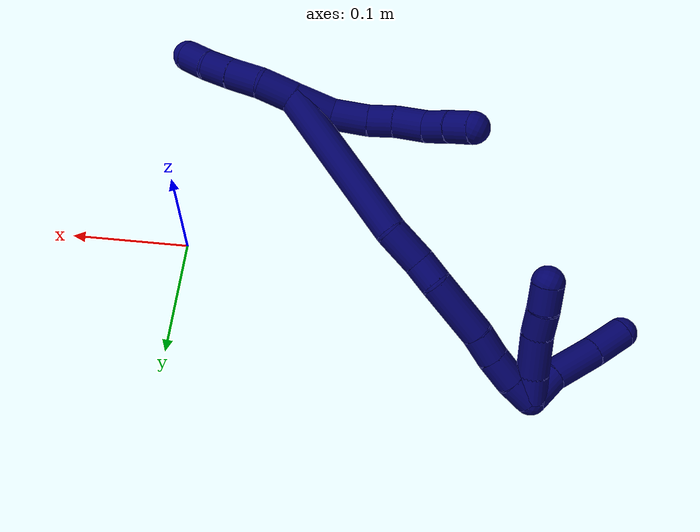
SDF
<sdf version="1.7">
 <world name="default">
  <model name="7">
   <static>0</static>
   <link name="7">
    <collision name="collision-cylinder-e_1_2_8">
     <pose>0.000533 -0.002074 0.0162 0.127331 0.032616 0.00208</pose>
     <geometry><cylinder><radius>0.0125</radius><length>0.032681</length></cylinder></geometry>
     <surface>
      <friction><ode><mu>1.16</mu><mu2>1.16</mu2><slip1>0</slip1><slip2>0</slip2></ode></friction>
      <contact><ode><kp>1e+06</kp><kd>1</kd><max_vel>0</max_vel><min_depth>0.001</min_depth></ode></contact>
     </surface>
    </collision>
    <visual name="visual-cylinder-e_1_2_8">
     <pose>0.000533 -0.002074 0.0162 0.127331 0.032616 0.00208</pose>
     <geometry><cylinder><radius>0.0125</radius><length>0.032681</length></cylinder></geometry>
     <material><ambient>0.003922 0 0.403922 1</ambient></material>
    </visual>
    <collision name="collision-cylinder-e_2_8_9">
     <pose>0.005211 -0.003806 0.046571 -0.024125 0.284496 -0.003455</pose>
     <geometry><cylinder><radius>0.0125</radius><length>0.029538</length></cylinder></geometry>
     <surface>
      <friction><ode><mu>1.16</mu><mu2>1.16</mu2><slip1>0</slip1><slip2>0</slip2></ode></friction>
      <contact><ode><kp>1e+06</kp><kd>1</kd><max_vel>0</max_vel><min_depth>0.001</min_depth></ode></contact>
     </surface>
    </collision>
    <visual name="visual-cylinder-e_2_8_9">
     <pose>0.005211 -0.003806 0.046571 -0.024125 0.284496 -0.003455</pose>
     <geometry><cylinder><radius>0.0125</radius><length>0.029538</length></cylinder></geometry>
     <material><ambient>0.003922 0 0.403922 1</ambient></material>
    </visual>
    <collision name="collision-cylinder-e_3_9_10">
     <pose>0.013733 -0.002551 0.070312 -0.095072 0.427178 -0.020636</pose>
     <geometry><cylinder><radius>0.0125</radius><length>0.021126</length></cylinder></geometry>
     <surface>
      <friction><ode><mu>1.16</mu><mu2>1.16</mu2><slip1>0</slip1><slip2>0</slip2></ode></friction>
      <contact><ode><kp>1e+06</kp><kd>1</kd><max_vel>0</max_vel><min_depth>0.001</min_depth></ode></contact>
     </surface>
    </collision>
    <visual name="visual-cylinder-e_3_9_10">
     <pose>0.013733 -0.002551 0.070312 -0.095072 0.427178 -0.020636</pose>
     <geometry><cylinder><radius>0.0125</radius><length>0.021126</length></cylinder></geometry>
     <material><ambient>0.003922 0 0.403922 1</ambient></material>
    </visual>
    <collision name="collision-cylinder-e_4_10_11">
     <pose>0.022226 0.002046 0.09192 -0.29706 0.316106 -0.047688</pose>
     <geometry><cylinder><radius>0.0125</radius><length>0.026491</length></cylinder></geometry>
     <surface>
      <friction><ode><mu>1.16</mu><mu2>1.16</mu2><slip1>0</slip1><slip2>0</slip2></ode></friction>
      <contact><ode><kp>1e+06</kp><kd>1</kd><max_vel>0</max_vel><min_depth>0.001</min_depth></ode></contact>
     </surface>
    </collision>
    <visual name="visual-cylinder-e_4_10_11">
     <pose>0.022226 0.002046 0.09192 -0.29706 0.316106 -0.047688</pose>
     <geometry><cylinder><radius>0.0125</radius><length>0.026491</length></cylinder></geometry>
     <material><ambient>0.003922 0 0.403922 1</ambient></material>
    </visual>
    <collision name="collision-cylinder-e_5_11_12">
     <pose>0.030673 0.010654 0.111556 -0.574925 0.446021 -0.133897</pose>
     <geometry><cylinder><radius>0.0125</radius><length>0.020069</length></cylinder></geometry>
     <surface>
      <friction><ode><mu>1.16</mu><mu2>1.16</mu2><slip1>0</slip1><slip2>0</slip2></ode></friction>
      <contact><ode><kp>1e+06</kp><kd>1</kd><max_vel>0</max_vel><min_depth>0.001</min_depth></ode></contact>
     </surface>
    </collision>
    <visual name="visual-cylinder-e_5_11_12">
     <pose>0.030673 0.010654 0.111556 -0.574925 0.446021 -0.133897</pose>
     <geometry><cylinder><radius>0.0125</radius><length>0.020069</length></cylinder></geometry>
     <material><ambient>0.003922 0 0.403922 1</ambient></material>
    </visual>
    <collision name="collision-cylinder-e_6_12_6">
     <pose>0.039001 0.020177 0.12714 -0.522532 0.409466 -0.110924</pose>
     <geometry><cylinder><radius>0.0125</radius><length>0.020095</length></cylinder></geometry>
     <surface>
      <friction><ode><mu>1.16</mu><mu2>1.16</mu2><slip1>0</slip1><slip2>0</slip2></ode></friction>
      <contact><ode><kp>1e+06</kp><kd>1</kd><max_vel>0</max_vel><min_depth>0.001</min_depth></ode></contact>
     </surface>
    </collision>
    <visual name="visual-cylinder-e_6_12_6">
     <pose>0.039001 0.020177 0.12714 -0.522532 0.409466 -0.110924</pose>
     <geometry><cylinder><radius>0.0125</radius><length>0.020095</length></cylinder></geometry>
     <material><ambient>0.003922 0 0.403922 1</ambient></material>
    </visual>
    <collision name="collision-cylinder-e_1_2_13">
     <pose>-0.000501 0.000101 -0.014416 -3.13462 -0.034744 2.74555</pose>
     <geometry><cylinder><radius>0.0125</radius><length>0.028849</length></cylinder></geometry>
     <surface>
      <friction><ode><mu>1.16</mu><mu2>1.16</mu2><slip1>0</slip1><slip2>0</slip2></ode></friction>
      <contact><ode><kp>1e+06</kp><kd>1</kd><max_vel>0</max_vel><min_depth>0.001</min_depth></ode></contact>
     </surface>
    </collision>
    <visual name="visual-cylinder-e_1_2_13">
     <pose>-0.000501 0.000101 -0.014416 -3.13462 -0.034744 2.74555</pose>
     <geometry><cylinder><radius>0.0125</radius><length>0.028849</length></cylinder></geometry>
     <material><ambient>0.003922 0 0.403922 1</ambient></material>
    </visual>
    <collision name="collision-cylinder-e_2_13_14">
     <pose>-0.003291 -0.002478 -0.041604 2.93482 -0.173628 -1.39592</pose>
     <geometry><cylinder><radius>0.0125</radius><length>0.0265</length></cylinder></geometry>
     <surface>
      <friction><ode><mu>1.16</mu><mu2>1.16</mu2><slip1>0</slip1><slip2>0</slip2></ode></friction>
      <contact><ode><kp>1e+06</kp><kd>1</kd><max_vel>0</max_vel><min_depth>0.001</min_depth></ode></contact>
     </surface>
    </collision>
    <visual name="visual-cylinder-e_2_13_14">
     <pose>-0.003291 -0.002478 -0.041604 2.93482 -0.173628 -1.39592</pose>
     <geometry><cylinder><radius>0.0125</radius><length>0.0265</length></cylinder></geometry>
     <material><ambient>0.003922 0 0.403922 1</ambient></material>
    </visual>
    <collision name="collision-cylinder-e_3_14_15">
     <pose>-0.007059 -0.007734 -0.06501 2.90388 -0.134379 -1.02627</pose>
     <geometry><cylinder><radius>0.0125</radius><length>0.02208</length></cylinder></geometry>
     <surface>
      <friction><ode><mu>1.16</mu><mu2>1.16</mu2><slip1>0</slip1><slip2>0</slip2></ode></friction>
      <contact><ode><kp>1e+06</kp><kd>1</kd><max_vel>0</max_vel><min_depth>0.001</min_depth></ode></contact>
     </surface>
    </collision>
    <visual name="visual-cylinder-e_3_14_15">
     <pose>-0.007059 -0.007734 -0.06501 2.90388 -0.134379 -1.02627</pose>
     <geometry><cylinder><radius>0.0125</radius><length>0.02208</length></cylinder></geometry>
     <material><ambient>0.003922 0 0.403922 1</ambient></material>
    </visual>
    <collision name="collision-cylinder-e_4_15_5">
     <pose>-0.009514 -0.015227 -0.085753 2.68896 -0.086552 -0.371775</pose>
     <geometry><cylinder><radius>0.0125</radius><length>0.02257</length></cylinder></geometry>
     <surface>
      <friction><ode><mu>1.16</mu><mu2>1.16</mu2><slip1>0</slip1><slip2>0</slip2></ode></friction>
      <contact><ode><kp>1e+06</kp><kd>1</kd><max_vel>0</max_vel><min_depth>0.001</min_depth></ode></contact>
     </surface>
    </collision>
    <visual name="visual-cylinder-e_4_15_5">
     <pose>-0.009514 -0.015227 -0.085753 2.68896 -0.086552 -0.371775</pose>
     <geometry><cylinder><radius>0.0125</radius><length>0.02257</length></cylinder></geometry>
     <material><ambient>0.003922 0 0.403922 1</ambient></material>
    </visual>
    <collision name="collision-cylinder-e_1_2_16">
     <pose>-0.026229 0.018352 0.056986 -0.311565 -0.412926 0.065766</pose>
     <geometry><cylinder><radius>0.0125</radius><length>0.130723</length></cylinder></geometry>
     <surface>
      <friction><ode><mu>1.16</mu><mu2>1.16</mu2><slip1>0</slip1><slip2>0</slip2></ode></friction>
      <contact><ode><kp>1e+06</kp><kd>1</kd><max_vel>0</max_vel><min_depth>0.001</min_depth></ode></contact>
     </surface>
    </collision>
    <visual name="visual-cylinder-e_1_2_16">
     <pose>-0.026229 0.018352 0.056986 -0.311565 -0.412926 0.065766</pose>
     <geometry><cylinder><radius>0.0125</radius><length>0.130723</length></cylinder></geometry>
     <material><ambient>0.003922 0 0.403922 1</ambient></material>
    </visual>
    <collision name="collision-cylinder-e_2_16_17">
     <pose>-0.058123 0.037593 0.128691 -0.060229 -0.366795 0.011175</pose>
     <geometry><cylinder><radius>0.0125</radius><length>0.031595</length></cylinder></geometry>
     <surface>
      <friction><ode><mu>1.16</mu><mu2>1.16</mu2><slip1>0</slip1><slip2>0</slip2></ode></friction>
      <contact><ode><kp>1e+06</kp><kd>1</kd><max_vel>0</max_vel><min_depth>0.001</min_depth></ode></contact>
     </surface>
    </collision>
    <visual name="visual-cylinder-e_2_16_17">
     <pose>-0.058123 0.037593 0.128691 -0.060229 -0.366795 0.011175</pose>
     <geometry><cylinder><radius>0.0125</radius><length>0.031595</length></cylinder></geometry>
     <material><ambient>0.003922 0 0.403922 1</ambient></material>
    </visual>
    <collision name="collision-cylinder-e_3_17_18">
     <pose>-0.067799 0.040445 0.152547 -0.21188 -0.405318 0.043694</pose>
     <geometry><cylinder><radius>0.0125</radius><length>0.020338</length></cylinder></geometry>
     <surface>
      <friction><ode><mu>1.16</mu><mu2>1.16</mu2><slip1>0</slip1><slip2>0</slip2></ode></friction>
      <contact><ode><kp>1e+06</kp><kd>1</kd><max_vel>0</max_vel><min_depth>0.001</min_depth></ode></contact>
     </surface>
    </collision>
    <visual name="visual-cylinder-e_3_17_18">
     <pose>-0.067799 0.040445 0.152547 -0.21188 -0.405318 0.043694</pose>
     <geometry><cylinder><radius>0.0125</radius><length>0.020338</length></cylinder></geometry>
     <material><ambient>0.003922 0 0.403922 1</ambient></material>
    </visual>
    <collision name="collision-cylinder-e_4_18_19">
     <pose>-0.082673 0.04115 0.184368 0.055512 -0.446049 -0.012593</pose>
     <geometry><cylinder><radius>0.0125</radius><length>0.050367</length></cylinder></geometry>
     <surface>
      <friction><ode><mu>1.16</mu><mu2>1.16</mu2><slip1>0</slip1><slip2>0</slip2></ode></friction>
      <contact><ode><kp>1e+06</kp><kd>1</kd><max_vel>0</max_vel><min_depth>0.001</min_depth></ode></contact>
     </surface>
    </collision>
    <visual name="visual-cylinder-e_4_18_19">
     <pose>-0.082673 0.04115 0.184368 0.055512 -0.446049 -0.012593</pose>
     <geometry><cylinder><radius>0.0125</radius><length>0.050367</length></cylinder></geometry>
     <material><ambient>0.003922 0 0.403922 1</ambient></material>
    </visual>
    <collision name="collision-cylinder-e_5_19_20">
     <pose>-0.0995 0.038959 0.216454 0.098705 -0.562989 -0.028564</pose>
     <geometry><cylinder><radius>0.0125</radius><length>0.022343</length></cylinder></geometry>
     <surface>
      <friction><ode><mu>1.16</mu><mu2>1.16</mu2><slip1>0</slip1><slip2>0</slip2></ode></friction>
      <contact><ode><kp>1e+06</kp><kd>1</kd><max_vel>0</max_vel><min_depth>0.001</min_depth></ode></contact>
     </surface>
    </collision>
    <visual name="visual-cylinder-e_5_19_20">
     <pose>-0.0995 0.038959 0.216454 0.098705 -0.562989 -0.028564</pose>
     <geometry><cylinder><radius>0.0125</radius><length>0.022343</length></cylinder></geometry>
     <material><ambient>0.003922 0 0.403922 1</ambient></material>
    </visual>
    <collision name="collision-cylinder-e_6_20_21">
     <pose>-0.110837 0.037313 0.236539 0.066756 -0.46525 -0.015821</pose>
     <geometry><cylinder><radius>0.0125</radius><length>0.02396</length></cylinder></geometry>
     <surface>
      <friction><ode><mu>1.16</mu><mu2>1.16</mu2><slip1>0</slip1><slip2>0</slip2></ode></friction>
      <contact><ode><kp>1e+06</kp><kd>1</kd><max_vel>0</max_vel><min_depth>0.001</min_depth></ode></contact>
     </surface>
    </collision>
    <visual name="visual-cylinder-e_6_20_21">
     <pose>-0.110837 0.037313 0.236539 0.066756 -0.46525 -0.015821</pose>
     <geometry><cylinder><radius>0.0125</radius><length>0.02396</length></cylinder></geometry>
     <material><ambient>0.003922 0 0.403922 1</ambient></material>
    </visual>
    <collision name="collision-cylinder-e_7_21_1">
     <pose>-0.11964 0.035593 0.256921 0.103351 -0.338016 -0.017651</pose>
     <geometry><cylinder><radius>0.0125</radius><length>0.020673</length></cylinder></geometry>
     <surface>
      <friction><ode><mu>1.16</mu><mu2>1.16</mu2><slip1>0</slip1><slip2>0</slip2></ode></friction>
      <contact><ode><kp>1e+06</kp><kd>1</kd><max_vel>0</max_vel><min_depth>0.001</min_depth></ode></contact>
     </surface>
    </collision>
    <visual name="visual-cylinder-e_7_21_1">
     <pose>-0.11964 0.035593 0.256921 0.103351 -0.338016 -0.017651</pose>
     <geometry><cylinder><radius>0.0125</radius><length>0.020673</length></cylinder></geometry>
     <material><ambient>0.003922 0 0.403922 1</ambient></material>
    </visual>
    <collision name="collision-cylinder-e_1_1_22">
     <pose>-0.113137 0.035386 0.262446 -2.95263 1.16636 -2.85627</pose>
     <geometry><cylinder><radius>0.0125</radius><length>0.021604</length></cylinder></geometry>
     <surface>
      <friction><ode><mu>1.16</mu><mu2>1.16</mu2><slip1>0</slip1><slip2>0</slip2></ode></friction>
      <contact><ode><kp>1e+06</kp><kd>1</kd><max_vel>0</max_vel><min_depth>0.001</min_depth></ode></contact>
     </surface>
    </collision>
    <visual name="visual-cylinder-e_1_1_22">
     <pose>-0.113137 0.035386 0.262446 -2.95263 1.16636 -2.85627</pose>
     <geometry><cylinder><radius>0.0125</radius><length>0.021604</length></cylinder></geometry>
     <material><ambient>0.003922 0 0.403922 1</ambient></material>
    </visual>
    <collision name="collision-cylinder-e_2_22_23">
     <pose>-0.087324 0.039471 0.251987 -2.65959 1.15083 -2.41719</pose>
     <geometry><cylinder><radius>0.0125</radius><length>0.034787</length></cylinder></geometry>
     <surface>
      <friction><ode><mu>1.16</mu><mu2>1.16</mu2><slip1>0</slip1><slip2>0</slip2></ode></friction>
      <contact><ode><kp>1e+06</kp><kd>1</kd><max_vel>0</max_vel><min_depth>0.001</min_depth></ode></contact>
     </surface>
    </collision>
    <visual name="visual-cylinder-e_2_22_23">
     <pose>-0.087324 0.039471 0.251987 -2.65959 1.15083 -2.41719</pose>
     <geometry><cylinder><radius>0.0125</radius><length>0.034787</length></cylinder></geometry>
     <material><ambient>0.003922 0 0.403922 1</ambient></material>
    </visual>
    <collision name="collision-cylinder-e_3_23_24">
     <pose>-0.061421 0.045818 0.242815 -2.3274 1.17335 -1.99075</pose>
     <geometry><cylinder><radius>0.0125</radius><length>0.021738</length></cylinder></geometry>
     <surface>
      <friction><ode><mu>1.16</mu><mu2>1.16</mu2><slip1>0</slip1><slip2>0</slip2></ode></friction>
      <contact><ode><kp>1e+06</kp><kd>1</kd><max_vel>0</max_vel><min_depth>0.001</min_depth></ode></contact>
     </surface>
    </collision>
    <visual name="visual-cylinder-e_3_23_24">
     <pose>-0.061421 0.045818 0.242815 -2.3274 1.17335 -1.99075</pose>
     <geometry><cylinder><radius>0.0125</radius><length>0.021738</length></cylinder></geometry>
     <material><ambient>0.003922 0 0.403922 1</ambient></material>
    </visual>
    <collision name="collision-cylinder-e_4_24_4">
     <pose>-0.041198 0.05067 0.236418 -2.66927 1.20215 -2.46655</pose>
     <geometry><cylinder><radius>0.0125</radius><length>0.021872</length></cylinder></geometry>
     <surface>
      <friction><ode><mu>1.16</mu><mu2>1.16</mu2><slip1>0</slip1><slip2>0</slip2></ode></friction>
      <contact><ode><kp>1e+06</kp><kd>1</kd><max_vel>0</max_vel><min_depth>0.001</min_depth></ode></contact>
     </surface>
    </collision>
    <visual name="visual-cylinder-e_4_24_4">
     <pose>-0.041198 0.05067 0.236418 -2.66927 1.20215 -2.46655</pose>
     <geometry><cylinder><radius>0.0125</radius><length>0.021872</length></cylinder></geometry>
     <material><ambient>0.003922 0 0.403922 1</ambient></material>
    </visual>
    <collision name="collision-cylinder-e_1_1_25">
     <pose>-0.113571 0.025861 0.271258 1.08232 0.765507 0.474817</pose>
     <geometry><cylinder><radius>0.0125</radius><length>0.027411</length></cylinder></geometry>
     <surface>
      <friction><ode><mu>1.16</mu><mu2>1.16</mu2><slip1>0</slip1><slip2>0</slip2></ode></friction>
      <contact><ode><kp>1e+06</kp><kd>1</kd><max_vel>0</max_vel><min_depth>0.001</min_depth></ode></contact>
     </surface>
    </collision>
    <visual name="visual-cylinder-e_1_1_25">
     <pose>-0.113571 0.025861 0.271258 1.08232 0.765507 0.474817</pose>
     <geometry><cylinder><radius>0.0125</radius><length>0.027411</length></cylinder></geometry>
     <material><ambient>0.003922 0 0.403922 1</ambient></material>
    </visual>
    <collision name="collision-cylinder-e_2_25_26">
     <pose>-0.091533 0.005868 0.287423 0.773923 0.661171 0.277894</pose>
     <geometry><cylinder><radius>0.0125</radius><length>0.040845</length></cylinder></geometry>
     <surface>
      <friction><ode><mu>1.16</mu><mu2>1.16</mu2><slip1>0</slip1><slip2>0</slip2></ode></friction>
      <contact><ode><kp>1e+06</kp><kd>1</kd><max_vel>0</max_vel><min_depth>0.001</min_depth></ode></contact>
     </surface>
    </collision>
    <visual name="visual-cylinder-e_2_25_26">
     <pose>-0.091533 0.005868 0.287423 0.773923 0.661171 0.277894</pose>
     <geometry><cylinder><radius>0.0125</radius><length>0.040845</length></cylinder></geometry>
     <material><ambient>0.003922 0 0.403922 1</ambient></material>
    </visual>
    <collision name="collision-cylinder-e_3_26_3">
     <pose>-0.068556 -0.013988 0.30727 0.801375 0.717641 0.315117</pose>
     <geometry><cylinder><radius>0.0125</radius><length>0.031743</length></cylinder></geometry>
     <surface>
      <friction><ode><mu>1.16</mu><mu2>1.16</mu2><slip1>0</slip1><slip2>0</slip2></ode></friction>
      <contact><ode><kp>1e+06</kp><kd>1</kd><max_vel>0</max_vel><min_depth>0.001</min_depth></ode></contact>
     </surface>
    </collision>
    <visual name="visual-cylinder-e_3_26_3">
     <pose>-0.068556 -0.013988 0.30727 0.801375 0.717641 0.315117</pose>
     <geometry><cylinder><radius>0.0125</radius><length>0.031743</length></cylinder></geometry>
     <material><ambient>0.003922 0 0.403922 1</ambient></material>
    </visual>
    <collision name="collision-sphere-3">
     <pose>-0.058118 -0.022576 0.315589 0 -0 0</pose>
     <geometry><sphere><radius>0.0125</radius></sphere></geometry>
     <surface>
      <friction><ode><mu>1.16</mu><mu2>1.16</mu2><slip1>0</slip1><slip2>0</slip2></ode></friction>
      <contact><ode><kp>1e+06</kp><kd>1</kd><max_vel>0</max_vel><min_depth>0.001</min_depth></ode></contact>
     </surface>
    </collision>
    <visual name="visual-sphere-3">
     <pose>-0.058118 -0.022576 0.315589 0 -0 0</pose>
     <geometry><sphere><radius>0.0125</radius></sphere></geometry>
     <material><ambient>0.003922 0 0.403922 1</ambient></material>
    </visual>
    <collision name="collision-sphere-26">
     <pose>-0.078993 -0.005399 0.298951 0 -0 0</pose>
     <geometry><sphere><radius>0.0125</radius></sphere></geometry>
     <surface>
      <friction><ode><mu>1.16</mu><mu2>1.16</mu2><slip1>0</slip1><slip2>0</slip2></ode></friction>
      <contact><ode><kp>1e+06</kp><kd>1</kd><max_vel>0</max_vel><min_depth>0.001</min_depth></ode></contact>
     </surface>
    </collision>
    <visual name="visual-sphere-26">
     <pose>-0.078993 -0.005399 0.298951 0 -0 0</pose>
     <geometry><sphere><radius>0.0125</radius></sphere></geometry>
     <material><ambient>0.003922 0 0.403922 1</ambient></material>
    </visual>
    <collision name="collision-sphere-25">
     <pose>-0.104074 0.017134 0.275896 0 -0 0</pose>
     <geometry><sphere><radius>0.0125</radius></sphere></geometry>
     <surface>
      <friction><ode><mu>1.16</mu><mu2>1.16</mu2><slip1>0</slip1><slip2>0</slip2></ode></friction>
      <contact><ode><kp>1e+06</kp><kd>1</kd><max_vel>0</max_vel><min_depth>0.001</min_depth></ode></contact>
     </surface>
    </collision>
    <visual name="visual-sphere-25">
     <pose>-0.104074 0.017134 0.275896 0 -0 0</pose>
     <geometry><sphere><radius>0.0125</radius></sphere></geometry>
     <material><ambient>0.003922 0 0.403922 1</ambient></material>
    </visual>
    <collision name="collision-sphere-4">
     <pose>-0.030997 0.052463 0.232909 0 -0 0</pose>
     <geometry><sphere><radius>0.0125</radius></sphere></geometry>
     <surface>
      <friction><ode><mu>1.16</mu><mu2>1.16</mu2><slip1>0</slip1><slip2>0</slip2></ode></friction>
      <contact><ode><kp>1e+06</kp><kd>1</kd><max_vel>0</max_vel><min_depth>0.001</min_depth></ode></contact>
     </surface>
    </collision>
    <visual name="visual-sphere-4">
     <pose>-0.030997 0.052463 0.232909 0 -0 0</pose>
     <geometry><sphere><radius>0.0125</radius></sphere></geometry>
     <material><ambient>0.003922 0 0.403922 1</ambient></material>
    </visual>
    <collision name="collision-sphere-24">
     <pose>-0.051399 0.048877 0.239927 0 -0 0</pose>
     <geometry><sphere><radius>0.0125</radius></sphere></geometry>
     <surface>
      <friction><ode><mu>1.16</mu><mu2>1.16</mu2><slip1>0</slip1><slip2>0</slip2></ode></friction>
      <contact><ode><kp>1e+06</kp><kd>1</kd><max_vel>0</max_vel><min_depth>0.001</min_depth></ode></contact>
     </surface>
    </collision>
    <visual name="visual-sphere-24">
     <pose>-0.051399 0.048877 0.239927 0 -0 0</pose>
     <geometry><sphere><radius>0.0125</radius></sphere></geometry>
     <material><ambient>0.003922 0 0.403922 1</ambient></material>
    </visual>
    <collision name="collision-sphere-23">
     <pose>-0.071442 0.042759 0.245703 0 -0 0</pose>
     <geometry><sphere><radius>0.0125</radius></sphere></geometry>
     <surface>
      <friction><ode><mu>1.16</mu><mu2>1.16</mu2><slip1>0</slip1><slip2>0</slip2></ode></friction>
      <contact><ode><kp>1e+06</kp><kd>1</kd><max_vel>0</max_vel><min_depth>0.001</min_depth></ode></contact>
     </surface>
    </collision>
    <visual name="visual-sphere-23">
     <pose>-0.071442 0.042759 0.245703 0 -0 0</pose>
     <geometry><sphere><radius>0.0125</radius></sphere></geometry>
     <material><ambient>0.003922 0 0.403922 1</ambient></material>
    </visual>
    <collision name="collision-sphere-22">
     <pose>-0.103206 0.036184 0.258271 0 -0 0</pose>
     <geometry><sphere><radius>0.0125</radius></sphere></geometry>
     <surface>
      <friction><ode><mu>1.16</mu><mu2>1.16</mu2><slip1>0</slip1><slip2>0</slip2></ode></friction>
      <contact><ode><kp>1e+06</kp><kd>1</kd><max_vel>0</max_vel><min_depth>0.001</min_depth></ode></contact>
     </surface>
    </collision>
    <visual name="visual-sphere-22">
     <pose>-0.103206 0.036184 0.258271 0 -0 0</pose>
     <geometry><sphere><radius>0.0125</radius></sphere></geometry>
     <material><ambient>0.003922 0 0.403922 1</ambient></material>
    </visual>
    <collision name="collision-sphere-1">
     <pose>-0.123067 0.034587 0.26662 0 -0 0</pose>
     <geometry><sphere><radius>0.0125</radius></sphere></geometry>
     <surface>
      <friction><ode><mu>1.16</mu><mu2>1.16</mu2><slip1>0</slip1><slip2>0</slip2></ode></friction>
      <contact><ode><kp>1e+06</kp><kd>1</kd><max_vel>0</max_vel><min_depth>0.001</min_depth></ode></contact>
     </surface>
    </collision>
    <visual name="visual-sphere-1">
     <pose>-0.123067 0.034587 0.26662 0 -0 0</pose>
     <geometry><sphere><radius>0.0125</radius></sphere></geometry>
     <material><ambient>0.003922 0 0.403922 1</ambient></material>
    </visual>
    <collision name="collision-sphere-21">
     <pose>-0.116212 0.036599 0.247222 0 -0 0</pose>
     <geometry><sphere><radius>0.0125</radius></sphere></geometry>
     <surface>
      <friction><ode><mu>1.16</mu><mu2>1.16</mu2><slip1>0</slip1><slip2>0</slip2></ode></friction>
      <contact><ode><kp>1e+06</kp><kd>1</kd><max_vel>0</max_vel><min_depth>0.001</min_depth></ode></contact>
     </surface>
    </collision>
    <visual name="visual-sphere-21">
     <pose>-0.116212 0.036599 0.247222 0 -0 0</pose>
     <geometry><sphere><radius>0.0125</radius></sphere></geometry>
     <material><ambient>0.003922 0 0.403922 1</ambient></material>
    </visual>
    <collision name="collision-sphere-12">
     <pose>0.035001 0.015577 0.119153 0 -0 0</pose>
     <geometry><sphere><radius>0.0125</radius></sphere></geometry>
     <surface>
      <friction><ode><mu>1.16</mu><mu2>1.16</mu2><slip1>0</slip1><slip2>0</slip2></ode></friction>
      <contact><ode><kp>1e+06</kp><kd>1</kd><max_vel>0</max_vel><min_depth>0.001</min_depth></ode></contact>
     </surface>
    </collision>
    <visual name="visual-sphere-12">
     <pose>0.035001 0.015577 0.119153 0 -0 0</pose>
     <geometry><sphere><radius>0.0125</radius></sphere></geometry>
     <material><ambient>0.003922 0 0.403922 1</ambient></material>
    </visual>
    <collision name="collision-sphere-11">
     <pose>0.026344 0.005731 0.103958 0 -0 0</pose>
     <geometry><sphere><radius>0.0125</radius></sphere></geometry>
     <surface>
      <friction><ode><mu>1.16</mu><mu2>1.16</mu2><slip1>0</slip1><slip2>0</slip2></ode></friction>
      <contact><ode><kp>1e+06</kp><kd>1</kd><max_vel>0</max_vel><min_depth>0.001</min_depth></ode></contact>
     </surface>
    </collision>
    <visual name="visual-sphere-11">
     <pose>0.026344 0.005731 0.103958 0 -0 0</pose>
     <geometry><sphere><radius>0.0125</radius></sphere></geometry>
     <material><ambient>0.003922 0 0.403922 1</ambient></material>
    </visual>
    <collision name="collision-sphere-10">
     <pose>0.018109 -0.001639 0.079882 0 -0 0</pose>
     <geometry><sphere><radius>0.0125</radius></sphere></geometry>
     <surface>
      <friction><ode><mu>1.16</mu><mu2>1.16</mu2><slip1>0</slip1><slip2>0</slip2></ode></friction>
      <contact><ode><kp>1e+06</kp><kd>1</kd><max_vel>0</max_vel><min_depth>0.001</min_depth></ode></contact>
     </surface>
    </collision>
    <visual name="visual-sphere-10">
     <pose>0.018109 -0.001639 0.079882 0 -0 0</pose>
     <geometry><sphere><radius>0.0125</radius></sphere></geometry>
     <material><ambient>0.003922 0 0.403922 1</ambient></material>
    </visual>
    <collision name="collision-sphere-9">
     <pose>0.009356 -0.003464 0.060742 0 -0 0</pose>
     <geometry><sphere><radius>0.0125</radius></sphere></geometry>
     <surface>
      <friction><ode><mu>1.16</mu><mu2>1.16</mu2><slip1>0</slip1><slip2>0</slip2></ode></friction>
      <contact><ode><kp>1e+06</kp><kd>1</kd><max_vel>0</max_vel><min_depth>0.001</min_depth></ode></contact>
     </surface>
    </collision>
    <visual name="visual-sphere-9">
     <pose>0.009356 -0.003464 0.060742 0 -0 0</pose>
     <geometry><sphere><radius>0.0125</radius></sphere></geometry>
     <material><ambient>0.003922 0 0.403922 1</ambient></material>
    </visual>
    <collision name="collision-sphere-2">
     <geometry><sphere><radius>0.0125</radius></sphere></geometry>
     <surface>
      <friction><ode><mu>1.16</mu><mu2>1.16</mu2><slip1>0</slip1><slip2>0</slip2></ode></friction>
      <contact><ode><kp>1e+06</kp><kd>1</kd><max_vel>0</max_vel><min_depth>0.001</min_depth></ode></contact>
     </surface>
    </collision>
    <visual name="visual-sphere-2">
     <geometry><sphere><radius>0.0125</radius></sphere></geometry>
     <material><ambient>0.003922 0 0.403922 1</ambient></material>
    </visual>
    <collision name="collision-sphere-19">
     <pose>-0.093537 0.03989 0.207053 0 -0 0</pose>
     <geometry><sphere><radius>0.0125</radius></sphere></geometry>
     <surface>
      <friction><ode><mu>1.16</mu><mu2>1.16</mu2><slip1>0</slip1><slip2>0</slip2></ode></friction>
      <contact><ode><kp>1e+06</kp><kd>1</kd><max_vel>0</max_vel><min_depth>0.001</min_depth></ode></contact>
     </surface>
    </collision>
    <visual name="visual-sphere-19">
     <pose>-0.093537 0.03989 0.207053 0 -0 0</pose>
     <geometry><sphere><radius>0.0125</radius></sphere></geometry>
     <material><ambient>0.003922 0 0.403922 1</ambient></material>
    </visual>
    <collision name="collision-sphere-8">
     <pose>0.001066 -0.004148 0.0324 0 -0 0</pose>
     <geometry><sphere><radius>0.0125</radius></sphere></geometry>
     <surface>
      <friction><ode><mu>1.16</mu><mu2>1.16</mu2><slip1>0</slip1><slip2>0</slip2></ode></friction>
      <contact><ode><kp>1e+06</kp><kd>1</kd><max_vel>0</max_vel><min_depth>0.001</min_depth></ode></contact>
     </surface>
    </collision>
    <visual name="visual-sphere-8">
     <pose>0.001066 -0.004148 0.0324 0 -0 0</pose>
     <geometry><sphere><radius>0.0125</radius></sphere></geometry>
     <material><ambient>0.003922 0 0.403922 1</ambient></material>
    </visual>
    <collision name="collision-sphere-6">
     <pose>0.043002 0.024776 0.135127 0 -0 0</pose>
     <geometry><sphere><radius>0.0125</radius></sphere></geometry>
     <surface>
      <friction><ode><mu>1.16</mu><mu2>1.16</mu2><slip1>0</slip1><slip2>0</slip2></ode></friction>
      <contact><ode><kp>1e+06</kp><kd>1</kd><max_vel>0</max_vel><min_depth>0.001</min_depth></ode></contact>
     </surface>
    </collision>
    <visual name="visual-sphere-6">
     <pose>0.043002 0.024776 0.135127 0 -0 0</pose>
     <geometry><sphere><radius>0.0125</radius></sphere></geometry>
     <material><ambient>0.003922 0 0.403922 1</ambient></material>
    </visual>
    <collision name="collision-sphere-13">
     <pose>-0.001002 0.000201 -0.028831 0 -0 0</pose>
     <geometry><sphere><radius>0.0125</radius></sphere></geometry>
     <surface>
      <friction><ode><mu>1.16</mu><mu2>1.16</mu2><slip1>0</slip1><slip2>0</slip2></ode></friction>
      <contact><ode><kp>1e+06</kp><kd>1</kd><max_vel>0</max_vel><min_depth>0.001</min_depth></ode></contact>
     </surface>
    </collision>
    <visual name="visual-sphere-13">
     <pose>-0.001002 0.000201 -0.028831 0 -0 0</pose>
     <geometry><sphere><radius>0.0125</radius></sphere></geometry>
     <material><ambient>0.003922 0 0.403922 1</ambient></material>
    </visual>
    <collision name="collision-sphere-14">
     <pose>-0.00558 -0.005158 -0.054377 0 -0 0</pose>
     <geometry><sphere><radius>0.0125</radius></sphere></geometry>
     <surface>
      <friction><ode><mu>1.16</mu><mu2>1.16</mu2><slip1>0</slip1><slip2>0</slip2></ode></friction>
      <contact><ode><kp>1e+06</kp><kd>1</kd><max_vel>0</max_vel><min_depth>0.001</min_depth></ode></contact>
     </surface>
    </collision>
    <visual name="visual-sphere-14">
     <pose>-0.00558 -0.005158 -0.054377 0 -0 0</pose>
     <geometry><sphere><radius>0.0125</radius></sphere></geometry>
     <material><ambient>0.003922 0 0.403922 1</ambient></material>
    </visual>
    <collision name="collision-sphere-15">
     <pose>-0.008538 -0.01031 -0.075643 0 -0 0</pose>
     <geometry><sphere><radius>0.0125</radius></sphere></geometry>
     <surface>
      <friction><ode><mu>1.16</mu><mu2>1.16</mu2><slip1>0</slip1><slip2>0</slip2></ode></friction>
      <contact><ode><kp>1e+06</kp><kd>1</kd><max_vel>0</max_vel><min_depth>0.001</min_depth></ode></contact>
     </surface>
    </collision>
    <visual name="visual-sphere-15">
     <pose>-0.008538 -0.01031 -0.075643 0 -0 0</pose>
     <geometry><sphere><radius>0.0125</radius></sphere></geometry>
     <material><ambient>0.003922 0 0.403922 1</ambient></material>
    </visual>
    <collision name="collision-sphere-5">
     <pose>-0.01049 -0.020144 -0.095864 0 -0 0</pose>
     <geometry><sphere><radius>0.0125</radius></sphere></geometry>
     <surface>
      <friction><ode><mu>1.16</mu><mu2>1.16</mu2><slip1>0</slip1><slip2>0</slip2></ode></friction>
      <contact><ode><kp>1e+06</kp><kd>1</kd><max_vel>0</max_vel><min_depth>0.001</min_depth></ode></contact>
     </surface>
    </collision>
    <visual name="visual-sphere-5">
     <pose>-0.01049 -0.020144 -0.095864 0 -0 0</pose>
     <geometry><sphere><radius>0.0125</radius></sphere></geometry>
     <material><ambient>0.003922 0 0.403922 1</ambient></material>
    </visual>
    <collision name="collision-sphere-16">
     <pose>-0.052458 0.036705 0.113971 0 -0 0</pose>
     <geometry><sphere><radius>0.0125</radius></sphere></geometry>
     <surface>
      <friction><ode><mu>1.16</mu><mu2>1.16</mu2><slip1>0</slip1><slip2>0</slip2></ode></friction>
      <contact><ode><kp>1e+06</kp><kd>1</kd><max_vel>0</max_vel><min_depth>0.001</min_depth></ode></contact>
     </surface>
    </collision>
    <visual name="visual-sphere-16">
     <pose>-0.052458 0.036705 0.113971 0 -0 0</pose>
     <geometry><sphere><radius>0.0125</radius></sphere></geometry>
     <material><ambient>0.003922 0 0.403922 1</ambient></material>
    </visual>
    <collision name="collision-sphere-17">
     <pose>-0.063789 0.03848 0.143411 0 -0 0</pose>
     <geometry><sphere><radius>0.0125</radius></sphere></geometry>
     <surface>
      <friction><ode><mu>1.16</mu><mu2>1.16</mu2><slip1>0</slip1><slip2>0</slip2></ode></friction>
      <contact><ode><kp>1e+06</kp><kd>1</kd><max_vel>0</max_vel><min_depth>0.001</min_depth></ode></contact>
     </surface>
    </collision>
    <visual name="visual-sphere-17">
     <pose>-0.063789 0.03848 0.143411 0 -0 0</pose>
     <geometry><sphere><radius>0.0125</radius></sphere></geometry>
     <material><ambient>0.003922 0 0.403922 1</ambient></material>
    </visual>
    <collision name="collision-sphere-18">
     <pose>-0.071808 0.042411 0.161683 0 -0 0</pose>
     <geometry><sphere><radius>0.0125</radius></sphere></geometry>
     <surface>
      <friction><ode><mu>1.16</mu><mu2>1.16</mu2><slip1>0</slip1><slip2>0</slip2></ode></friction>
      <contact><ode><kp>1e+06</kp><kd>1</kd><max_vel>0</max_vel><min_depth>0.001</min_depth></ode></contact>
     </surface>
    </collision>
    <visual name="visual-sphere-18">
     <pose>-0.071808 0.042411 0.161683 0 -0 0</pose>
     <geometry><sphere><radius>0.0125</radius></sphere></geometry>
     <material><ambient>0.003922 0 0.403922 1</ambient></material>
    </visual>
    <collision name="collision-sphere-20">
     <pose>-0.105462 0.038028 0.225856 0 -0 0</pose>
     <geometry><sphere><radius>0.0125</radius></sphere></geometry>
     <surface>
      <friction><ode><mu>1.16</mu><mu2>1.16</mu2><slip1>0</slip1><slip2>0</slip2></ode></friction>
      <contact><ode><kp>1e+06</kp><kd>1</kd><max_vel>0</max_vel><min_depth>0.001</min_depth></ode></contact>
     </surface>
    </collision>
    <visual name="visual-sphere-20">
     <pose>-0.105462 0.038028 0.225856 0 -0 0</pose>
     <geometry><sphere><radius>0.0125</radius></sphere></geometry>
     <material><ambient>0.003922 0 0.403922 1</ambient></material>
    </visual>
    <inertial>
     <pose>-0.043905 0.018121 0.132351 0 -0 0</pose>
     <mass>0.75</mass>
     <inertia><ixx>0.000231</ixx><ixy>0</ixy><ixz>0</ixz><iyy>0.00025</iyy><iyz>0</iyz><izz>4.4e-05</izz></inertia>
    </inertial>
   </link>
   <pose>-0.088405 -0.068114 0.126872 1.83324 -0.753625 -2.07765</pose>
  </model>
 </world>
</sdf>
